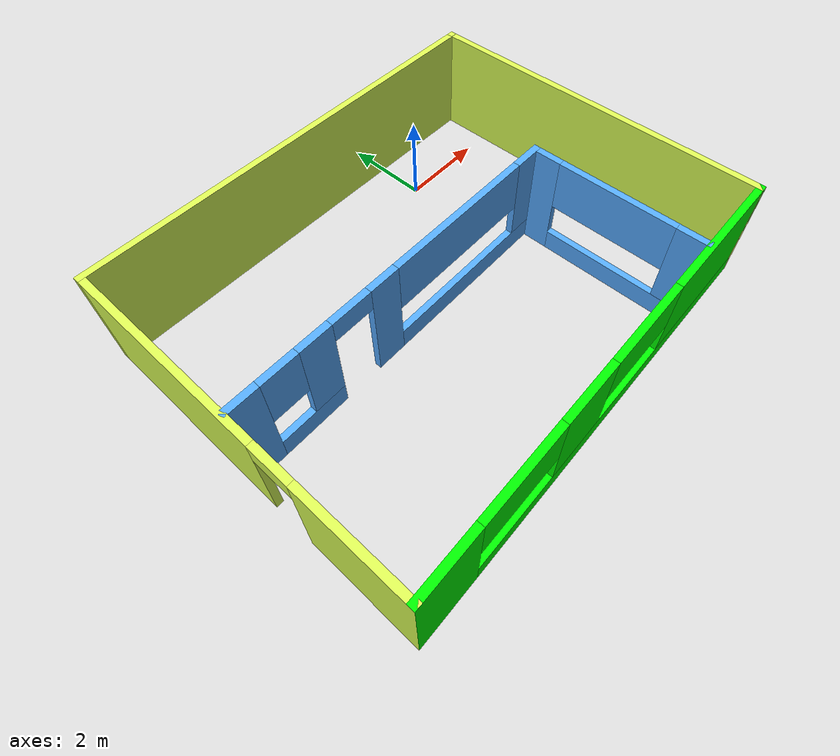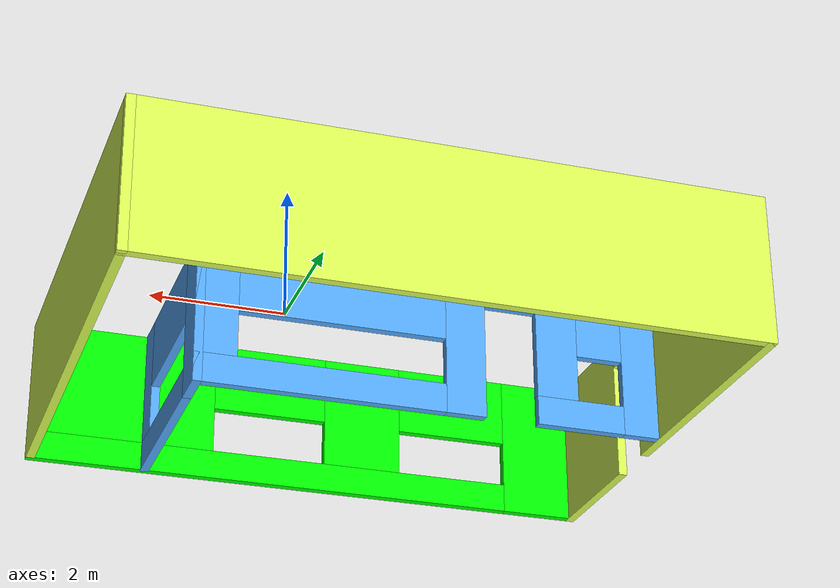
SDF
<?xml version='1.0'?>
<sdf version='1.6'>
  <model name='warehouse'>
    <pose frame=''>-2.28837 -2.75897 0 0 -0 0</pose>
    <link name='Wall_0'>
      <pose frame=''>-4.925 0 0 0 -0 -1.5708</pose>
      <visual name='Wall_0_Visual_0'>
        <pose frame=''>-1.66325 0 1.25 0 -0 0</pose>
        <geometry>
          <box>
            <size>4.67351 0.15 2.5</size>
          </box>
        </geometry>
        <material>
          <script>
            <uri>file://media/materials/scripts/gazebo.material</uri>
            <name>Gazebo/Grey</name>
          </script>
          <ambient>0.858824 1 0.333333 1</ambient>
        </material>
        <meta>
          <layer>0</layer>
        </meta>
      </visual>
      <collision name='Wall_0_Collision_0'>
        <geometry>
          <box>
            <size>4.67351 0.15 2.5</size>
          </box>
        </geometry>
        <pose frame=''>-1.66325 0 1.25 0 -0 0</pose>
      </collision>
      <visual name='Wall_0_Visual_1'>
        <pose frame=''>2.78675 0 1.25 0 -0 0</pose>
        <geometry>
          <box>
            <size>2.42649 0.15 2.5</size>
          </box>
        </geometry>
        <material>
          <script>
            <uri>file://media/materials/scripts/gazebo.material</uri>
            <name>Gazebo/Grey</name>
          </script>
          <ambient>0.858824 1 0.333333 1</ambient>
        </material>
        <meta>
          <layer>0</layer>
        </meta>
      </visual>
      <collision name='Wall_0_Collision_1'>
        <geometry>
          <box>
            <size>2.42649 0.15 2.5</size>
          </box>
        </geometry>
        <pose frame=''>2.78675 0 1.25 0 -0 0</pose>
      </collision>
      <visual name='Wall_0_Visual_2'>
        <pose frame=''>1.12351 0 2.25 0 -0 0</pose>
        <geometry>
          <box>
            <size>0.9 0.15 0.5</size>
          </box>
        </geometry>
        <material>
          <script>
            <uri>file://media/materials/scripts/gazebo.material</uri>
            <name>Gazebo/Grey</name>
          </script>
          <ambient>0.858824 1 0.333333 1</ambient>
        </material>
        <meta>
          <layer>0</layer>
        </meta>
      </visual>
      <collision name='Wall_0_Collision_2'>
        <geometry>
          <box>
            <size>0.9 0.15 0.5</size>
          </box>
        </geometry>
        <pose frame=''>1.12351 0 2.25 0 -0 0</pose>
      </collision>
    </link>
    <link name='Wall_1'>
      <pose frame=''>-0 -3.925 0 0 -0 0</pose>
      <visual name='Wall_1_Visual_0'>
        <pose frame=''>-4.30265 0 1.25 0 -0 0</pose>
        <geometry>
          <box>
            <size>1.39471 0.15 2.5</size>
          </box>
        </geometry>
        <material>
          <script>
            <uri>file://media/materials/scripts/gazebo.material</uri>
            <name>Gazebo/Grey</name>
          </script>
          <ambient>0 1 0 1</ambient>
        </material>
        <meta>
          <layer>0</layer>
        </meta>
      </visual>
      <collision name='Wall_1_Collision_0'>
        <geometry>
          <box>
            <size>1.39471 0.15 2.5</size>
          </box>
        </geometry>
        <pose frame=''>-4.30265 0 1.25 0 -0 0</pose>
      </collision>
      <visual name='Wall_1_Visual_1'>
        <pose frame=''>0.697355 0 0.25 0 -0 0</pose>
        <geometry>
          <box>
            <size>8.60529 0.15 0.5</size>
          </box>
        </geometry>
        <material>
          <script>
            <uri>file://media/materials/scripts/gazebo.material</uri>
            <name>Gazebo/Grey</name>
          </script>
          <ambient>0 1 0 1</ambient>
        </material>
        <meta>
          <layer>0</layer>
        </meta>
      </visual>
      <collision name='Wall_1_Collision_1'>
        <geometry>
          <box>
            <size>8.60529 0.15 0.5</size>
          </box>
        </geometry>
        <pose frame=''>0.697355 0 0.25 0 -0 0</pose>
      </collision>
      <visual name='Wall_1_Visual_2'>
        <pose frame=''>-0.922399 0 1.5 0 -0 0</pose>
        <geometry>
          <box>
            <size>1.39238 0.15 2</size>
          </box>
        </geometry>
        <material>
          <script>
            <uri>file://media/materials/scripts/gazebo.material</uri>
            <name>Gazebo/Grey</name>
          </script>
          <ambient>0 1 0 1</ambient>
        </material>
        <meta>
          <layer>0</layer>
        </meta>
      </visual>
      <collision name='Wall_1_Collision_2'>
        <geometry>
          <box>
            <size>1.39238 0.15 2</size>
          </box>
        </geometry>
        <pose frame=''>-0.922399 0 1.5 0 -0 0</pose>
      </collision>
      <visual name='Wall_1_Visual_3'>
        <pose frame=''>3.3903 0 1.5 0 -0 0</pose>
        <geometry>
          <box>
            <size>3.2194 0.15 2</size>
          </box>
        </geometry>
        <material>
          <script>
            <uri>file://media/materials/scripts/gazebo.material</uri>
            <name>Gazebo/Grey</name>
          </script>
          <ambient>0 1 0 1</ambient>
        </material>
        <meta>
          <layer>0</layer>
        </meta>
      </visual>
      <collision name='Wall_1_Collision_3'>
        <geometry>
          <box>
            <size>3.2194 0.15 2</size>
          </box>
        </geometry>
        <pose frame=''>3.3903 0 1.5 0 -0 0</pose>
      </collision>
      <visual name='Wall_1_Visual_4'>
        <pose frame=''>-2.61194 0 1.9 0 -0 0</pose>
        <geometry>
          <box>
            <size>1.9867 0.15 1.2</size>
          </box>
        </geometry>
        <material>
          <script>
            <uri>file://media/materials/scripts/gazebo.material</uri>
            <name>Gazebo/Grey</name>
          </script>
          <ambient>0 1 0 1</ambient>
        </material>
        <meta>
          <layer>0</layer>
        </meta>
      </visual>
      <collision name='Wall_1_Collision_4'>
        <geometry>
          <box>
            <size>1.9867 0.15 1.2</size>
          </box>
        </geometry>
        <pose frame=''>-2.61194 0 1.9 0 -0 0</pose>
      </collision>
      <visual name='Wall_1_Visual_5'>
        <pose frame=''>0.777198 0 1.9 0 -0 0</pose>
        <geometry>
          <box>
            <size>2.00681 0.15 1.2</size>
          </box>
        </geometry>
        <material>
          <script>
            <uri>file://media/materials/scripts/gazebo.material</uri>
            <name>Gazebo/Grey</name>
          </script>
          <ambient>0 1 0 1</ambient>
        </material>
        <meta>
          <layer>0</layer>
        </meta>
      </visual>
      <collision name='Wall_1_Collision_5'>
        <geometry>
          <box>
            <size>2.00681 0.15 1.2</size>
          </box>
        </geometry>
        <pose frame=''>0.777198 0 1.9 0 -0 0</pose>
      </collision>
    </link>
    <link name='Wall_2'>
      <collision name='Wall_2_Collision'>
        <geometry>
          <box>
            <size>8 0.15 2.5</size>
          </box>
        </geometry>
        <pose frame=''>0 0 1.25 0 -0 0</pose>
      </collision>
      <visual name='Wall_2_Visual'>
        <pose frame=''>0 0 1.25 0 -0 0</pose>
        <geometry>
          <box>
            <size>8 0.15 2.5</size>
          </box>
        </geometry>
        <material>
          <script>
            <uri>file://media/materials/scripts/gazebo.material</uri>
            <name>Gazebo/Grey</name>
          </script>
          <ambient>0.858824 1 0.333333 1</ambient>
        </material>
        <meta>
          <layer>0</layer>
        </meta>
      </visual>
      <pose frame=''>4.925 0 0 0 -0 1.5708</pose>
    </link>
    <link name='Wall_3'>
      <collision name='Wall_3_Collision'>
        <geometry>
          <box>
            <size>10 0.15 2.5</size>
          </box>
        </geometry>
        <pose frame=''>0 0 1.25 0 -0 0</pose>
      </collision>
      <visual name='Wall_3_Visual'>
        <pose frame=''>0 0 1.25 0 -0 0</pose>
        <geometry>
          <box>
            <size>10 0.15 2.5</size>
          </box>
        </geometry>
        <material>
          <script>
            <uri>file://media/materials/scripts/gazebo.material</uri>
            <name>Gazebo/Grey</name>
          </script>
          <ambient>0.858824 1 0.333333 1</ambient>
        </material>
        <meta>
          <layer>0</layer>
        </meta>
      </visual>
      <pose frame=''>-0 3.925 0 0 -0 3.14159</pose>
    </link>
    <link name='Wall_5'>
      <pose frame=''>-0.959773 0.002853 0 0 -0 0</pose>
      <visual name='Wall_5_Visual_0'>
        <pose frame=''>-3.63955 0 1.25 0 -0 0</pose>
        <geometry>
          <box>
            <size>0.720906 0.15 2.5</size>
          </box>
        </geometry>
        <material>
          <script>
            <uri>file://media/materials/scripts/gazebo.material</uri>
            <name>Gazebo/Grey</name>
          </script>
          <ambient>0.333333 0.666667 1 1</ambient>
        </material>
        <meta>
          <layer>0</layer>
        </meta>
      </visual>
      <collision name='Wall_5_Collision_0'>
        <geometry>
          <box>
            <size>0.720906 0.15 2.5</size>
          </box>
        </geometry>
        <pose frame=''>-3.63955 0 1.25 0 -0 0</pose>
      </collision>
      <visual name='Wall_5_Visual_1'>
        <pose frame=''>-0.52092 0 1.25 0 -0 0</pose>
        <geometry>
          <box>
            <size>0.678631 0.15 2.5</size>
          </box>
        </geometry>
        <material>
          <script>
            <uri>file://media/materials/scripts/gazebo.material</uri>
            <name>Gazebo/Grey</name>
          </script>
          <ambient>0.333333 0.666667 1 1</ambient>
        </material>
        <meta>
          <layer>0</layer>
        </meta>
      </visual>
      <collision name='Wall_5_Collision_1'>
        <geometry>
          <box>
            <size>0.678631 0.15 2.5</size>
          </box>
        </geometry>
        <pose frame=''>-0.52092 0 1.25 0 -0 0</pose>
      </collision>
      <visual name='Wall_5_Visual_2'>
        <pose frame=''>-2.51966 0 0.25 0 -0 0</pose>
        <geometry>
          <box>
            <size>1.51886 0.15 0.5</size>
          </box>
        </geometry>
        <material>
          <script>
            <uri>file://media/materials/scripts/gazebo.material</uri>
            <name>Gazebo/Grey</name>
          </script>
          <ambient>0.333333 0.666667 1 1</ambient>
        </material>
        <meta>
          <layer>0</layer>
        </meta>
      </visual>
      <collision name='Wall_5_Collision_2'>
        <geometry>
          <box>
            <size>1.51886 0.15 0.5</size>
          </box>
        </geometry>
        <pose frame=''>-2.51966 0 0.25 0 -0 0</pose>
      </collision>
      <visual name='Wall_5_Visual_3'>
        <pose frame=''>1.9092 0 0.25 0 -0 0</pose>
        <geometry>
          <box>
            <size>4.1816 0.15 0.5</size>
          </box>
        </geometry>
        <material>
          <script>
            <uri>file://media/materials/scripts/gazebo.material</uri>
            <name>Gazebo/Grey</name>
          </script>
          <ambient>0.333333 0.666667 1 1</ambient>
        </material>
        <meta>
          <layer>0</layer>
        </meta>
      </visual>
      <collision name='Wall_5_Collision_3'>
        <geometry>
          <box>
            <size>4.1816 0.15 0.5</size>
          </box>
        </geometry>
        <pose frame=''>1.9092 0 0.25 0 -0 0</pose>
      </collision>
      <visual name='Wall_5_Visual_4'>
        <pose frame=''>-2.11966 0 1.5 0 -0 0</pose>
        <geometry>
          <box>
            <size>0.718859 0.15 2</size>
          </box>
        </geometry>
        <material>
          <script>
            <uri>file://media/materials/scripts/gazebo.material</uri>
            <name>Gazebo/Grey</name>
          </script>
          <ambient>0.333333 0.666667 1 1</ambient>
        </material>
        <meta>
          <layer>0</layer>
        </meta>
      </visual>
      <collision name='Wall_5_Collision_4'>
        <geometry>
          <box>
            <size>0.718859 0.15 2</size>
          </box>
        </geometry>
        <pose frame=''>-2.11966 0 1.5 0 -0 0</pose>
      </collision>
      <visual name='Wall_5_Visual_5'>
        <pose frame=''>-2.11966 0 1.5 0 -0 0</pose>
        <geometry>
          <box>
            <size>0.718859 0.15 2</size>
          </box>
        </geometry>
        <material>
          <script>
            <uri>file://media/materials/scripts/gazebo.material</uri>
            <name>Gazebo/Grey</name>
          </script>
          <ambient>0.333333 0.666667 1 1</ambient>
        </material>
        <meta>
          <layer>0</layer>
        </meta>
      </visual>
      <collision name='Wall_5_Collision_5'>
        <geometry>
          <box>
            <size>0.718859 0.15 2</size>
          </box>
        </geometry>
        <pose frame=''>-2.11966 0 1.5 0 -0 0</pose>
      </collision>
      <visual name='Wall_5_Visual_6'>
        <pose frame=''>3.64675 0 1.5 0 -0 0</pose>
        <geometry>
          <box>
            <size>0.706499 0.15 2</size>
          </box>
        </geometry>
        <material>
          <script>
            <uri>file://media/materials/scripts/gazebo.material</uri>
            <name>Gazebo/Grey</name>
          </script>
          <ambient>0.333333 0.666667 1 1</ambient>
        </material>
        <meta>
          <layer>0</layer>
        </meta>
      </visual>
      <collision name='Wall_5_Collision_6'>
        <geometry>
          <box>
            <size>0.706499 0.15 2</size>
          </box>
        </geometry>
        <pose frame=''>3.64675 0 1.5 0 -0 0</pose>
      </collision>
      <visual name='Wall_5_Visual_7'>
        <pose frame=''>-2.87909 0 1.9 0 -0 0</pose>
        <geometry>
          <box>
            <size>0.8 0.15 1.2</size>
          </box>
        </geometry>
        <material>
          <script>
            <uri>file://media/materials/scripts/gazebo.material</uri>
            <name>Gazebo/Grey</name>
          </script>
          <ambient>0.333333 0.666667 1 1</ambient>
        </material>
        <meta>
          <layer>0</layer>
        </meta>
      </visual>
      <collision name='Wall_5_Collision_7'>
        <geometry>
          <box>
            <size>0.8 0.15 1.2</size>
          </box>
        </geometry>
        <pose frame=''>-2.87909 0 1.9 0 -0 0</pose>
      </collision>
      <visual name='Wall_5_Visual_8'>
        <pose frame=''>1.55595 0 1.9 0 -0 0</pose>
        <geometry>
          <box>
            <size>3.47511 0.15 1.2</size>
          </box>
        </geometry>
        <material>
          <script>
            <uri>file://media/materials/scripts/gazebo.material</uri>
            <name>Gazebo/Grey</name>
          </script>
          <ambient>0.333333 0.666667 1 1</ambient>
        </material>
        <meta>
          <layer>0</layer>
        </meta>
      </visual>
      <collision name='Wall_5_Collision_8'>
        <geometry>
          <box>
            <size>3.47511 0.15 1.2</size>
          </box>
        </geometry>
        <pose frame=''>1.55595 0 1.9 0 -0 0</pose>
      </collision>
      <visual name='Wall_5_Visual_9'>
        <pose frame=''>-1.31024 0 2.25 0 -0 0</pose>
        <geometry>
          <box>
            <size>0.9 0.15 0.5</size>
          </box>
        </geometry>
        <material>
          <script>
            <uri>file://media/materials/scripts/gazebo.material</uri>
            <name>Gazebo/Grey</name>
          </script>
          <ambient>0.333333 0.666667 1 1</ambient>
        </material>
        <meta>
          <layer>0</layer>
        </meta>
      </visual>
      <collision name='Wall_5_Collision_9'>
        <geometry>
          <box>
            <size>0.9 0.15 0.5</size>
          </box>
        </geometry>
        <pose frame=''>-1.31024 0 2.25 0 -0 0</pose>
      </collision>
      <visual name='Wall_5_Visual_10'>
        <pose frame=''>-1.31024 0 2.25 0 -0 0</pose>
        <geometry>
          <box>
            <size>0.9 0.15 0.5</size>
          </box>
        </geometry>
        <material>
          <script>
            <uri>file://media/materials/scripts/gazebo.material</uri>
            <name>Gazebo/Grey</name>
          </script>
          <ambient>0.333333 0.666667 1 1</ambient>
        </material>
        <meta>
          <layer>0</layer>
        </meta>
      </visual>
      <collision name='Wall_5_Collision_10'>
        <geometry>
          <box>
            <size>0.9 0.15 0.5</size>
          </box>
        </geometry>
        <pose frame=''>-1.31024 0 2.25 0 -0 0</pose>
      </collision>
    </link>
    <link name='Wall_6'>
      <pose frame=''>2.96523 -1.92215 0 0 -0 -1.5708</pose>
      <visual name='Wall_6_Visual_0'>
        <pose frame=''>-1.63955 0 1.25 0 -0 0</pose>
        <geometry>
          <box>
            <size>0.720906 0.15 2.5</size>
          </box>
        </geometry>
        <material>
          <script>
            <uri>file://media/materials/scripts/gazebo.material</uri>
            <name>Gazebo/Grey</name>
          </script>
          <ambient>0.333333 0.666667 1 1</ambient>
        </material>
        <meta>
          <layer>0</layer>
        </meta>
      </visual>
      <collision name='Wall_6_Collision_0'>
        <geometry>
          <box>
            <size>0.720906 0.15 2.5</size>
          </box>
        </geometry>
        <pose frame=''>-1.63955 0 1.25 0 -0 0</pose>
      </collision>
      <visual name='Wall_6_Visual_1'>
        <pose frame=''>0.360453 0 0.25 0 -0 0</pose>
        <geometry>
          <box>
            <size>3.27909 0.15 0.5</size>
          </box>
        </geometry>
        <material>
          <script>
            <uri>file://media/materials/scripts/gazebo.material</uri>
            <name>Gazebo/Grey</name>
          </script>
          <ambient>0.333333 0.666667 1 1</ambient>
        </material>
        <meta>
          <layer>0</layer>
        </meta>
      </visual>
      <collision name='Wall_6_Collision_1'>
        <geometry>
          <box>
            <size>3.27909 0.15 0.5</size>
          </box>
        </geometry>
        <pose frame=''>0.360453 0 0.25 0 -0 0</pose>
      </collision>
      <visual name='Wall_6_Visual_2'>
        <pose frame=''>1.65551 0 1.5 0 -0 0</pose>
        <geometry>
          <box>
            <size>0.688986 0.15 2</size>
          </box>
        </geometry>
        <material>
          <script>
            <uri>file://media/materials/scripts/gazebo.material</uri>
            <name>Gazebo/Grey</name>
          </script>
          <ambient>0.333333 0.666667 1 1</ambient>
        </material>
        <meta>
          <layer>0</layer>
        </meta>
      </visual>
      <collision name='Wall_6_Collision_2'>
        <geometry>
          <box>
            <size>0.688986 0.15 2</size>
          </box>
        </geometry>
        <pose frame=''>1.65551 0 1.5 0 -0 0</pose>
      </collision>
      <visual name='Wall_6_Visual_3'>
        <pose frame=''>0.01596 0 1.9 0 -0 0</pose>
        <geometry>
          <box>
            <size>2.59011 0.15 1.2</size>
          </box>
        </geometry>
        <material>
          <script>
            <uri>file://media/materials/scripts/gazebo.material</uri>
            <name>Gazebo/Grey</name>
          </script>
          <ambient>0.333333 0.666667 1 1</ambient>
        </material>
        <meta>
          <layer>0</layer>
        </meta>
      </visual>
      <collision name='Wall_6_Collision_3'>
        <geometry>
          <box>
            <size>2.59011 0.15 1.2</size>
          </box>
        </geometry>
        <pose frame=''>0.01596 0 1.9 0 -0 0</pose>
      </collision>
    </link>
    <static>1</static>
  </model>
</sdf>
